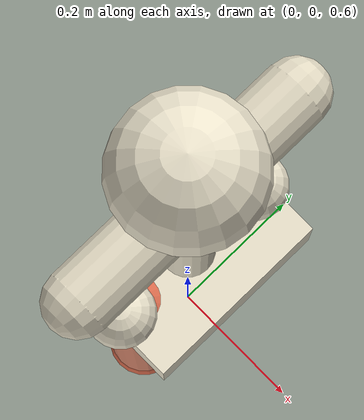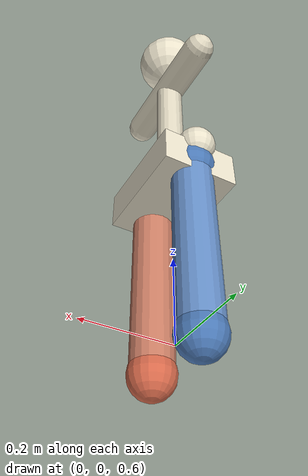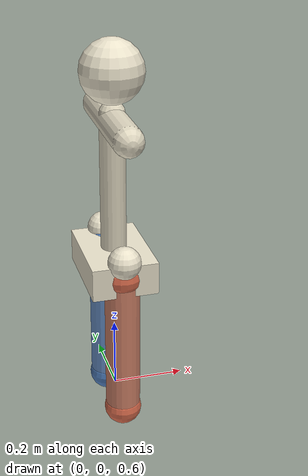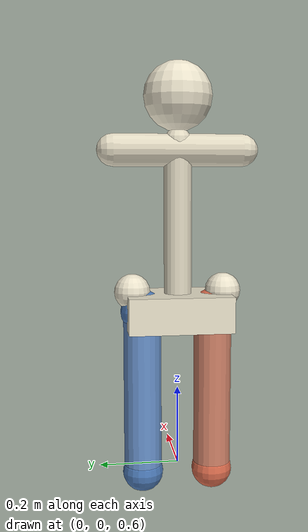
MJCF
<mujoco model="hip_pendulum">
  <compiler angle="radian"/>
  <worldbody>
    <body name="pelvis" pos="0 0 1.0">
      <freejoint/>
      <!-- 골반 본체 -->
      <geom name="pelvis_geom" type="box" size="0.09 0.13 0.045" density="1200"
            contype="0" conaffinity="0" rgba="0.92 0.89 0.80 1"/>
      <!-- 장골능 (시각) -->
      <geom name="iliac_r" type="sphere" pos="0 -0.115 0.05" size="0.045" density="10"
            contype="0" conaffinity="0" rgba="0.92 0.89 0.80 1"/>
      <geom name="iliac_l" type="sphere" pos="0 0.115 0.05" size="0.045" density="10"
            contype="0" conaffinity="0" rgba="0.92 0.89 0.80 1"/>
      <!-- 척추 기둥 + 어깨/머리 (시각: 스케일·방향 기준) -->
      <geom name="spine" type="capsule" fromto="0 0 0.04 0 0 0.42" size="0.035" density="20"
            contype="0" conaffinity="0" rgba="0.88 0.85 0.76 1"/>
      <geom name="shoulders" type="capsule" fromto="0 -0.16 0.40 0 0.16 0.40" size="0.04" density="20"
            contype="0" conaffinity="0" rgba="0.88 0.85 0.76 1"/>
      <geom name="head" type="sphere" pos="0 0 0.53" size="0.085" density="20"
            contype="0" conaffinity="0" rgba="0.92 0.89 0.80 1"/>

      <body name="right_thigh" pos="0 -0.09 0">
        <joint name="right_hip_pitch" type="hinge" axis="0 1 0" range="-1.6 1.6"
               armature="0.01" frictionloss="0.1"/>
        <!-- 고관절 구 (시각) -->
        <geom name="right_hip_ball" type="sphere" pos="0 0 0" size="0.055" density="10"
              contype="0" conaffinity="0" rgba="0.85 0.42 0.30 1"/>
        <geom name="right_thigh_geom" type="capsule" fromto="0 0 0 0 0 -0.42"
              size="0.048" density="1850" contype="0" conaffinity="0"
              rgba="0.80 0.50 0.40 1"/>
        <!-- 무릎 구 (시각) -->
        <geom name="right_knee" type="sphere" pos="0 0 -0.42" size="0.052" density="10"
              contype="0" conaffinity="0" rgba="0.85 0.42 0.30 1"/>
      </body>
      <body name="left_thigh" pos="0 0.09 0">
        <joint name="left_hip_pitch" type="hinge" axis="0 1 0" range="-1.6 1.6"
               armature="0.01" frictionloss="0.1"/>
        <geom name="left_hip_ball" type="sphere" pos="0 0 0" size="0.055" density="10"
              contype="0" conaffinity="0" rgba="0.30 0.48 0.72 1"/>
        <geom name="left_thigh_geom" type="capsule" fromto="0 0 0 0 0 -0.42"
              size="0.048" density="1850" contype="0" conaffinity="0"
              rgba="0.40 0.56 0.78 1"/>
        <geom name="left_knee" type="sphere" pos="0 0 -0.42" size="0.052" density="10"
              contype="0" conaffinity="0" rgba="0.30 0.48 0.72 1"/>
      </body>
    </body>
  </worldbody>
</mujoco>
